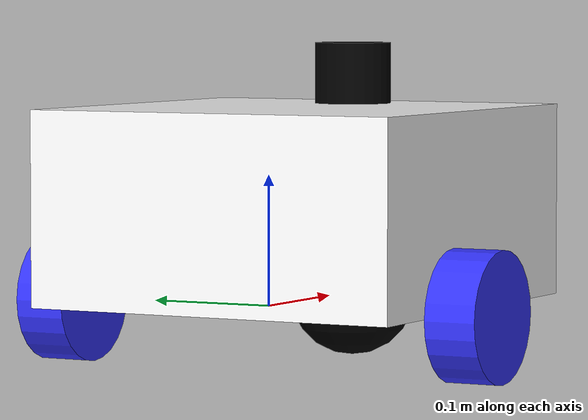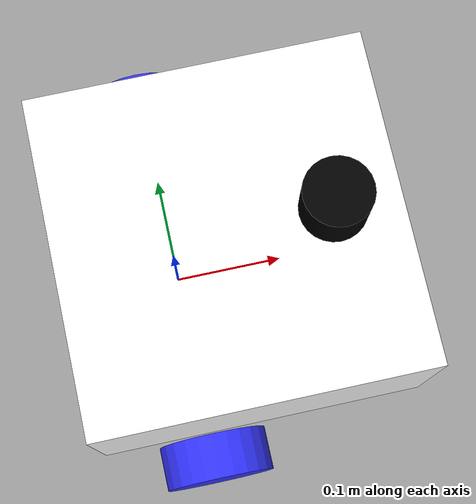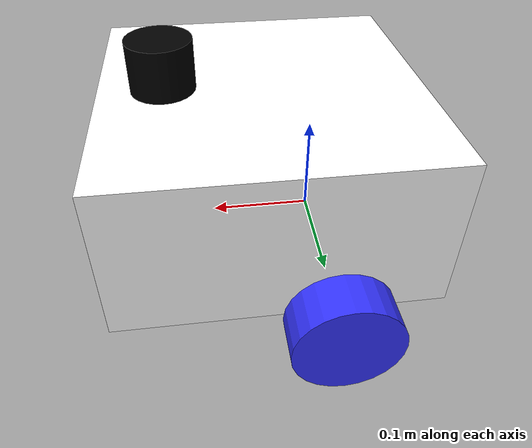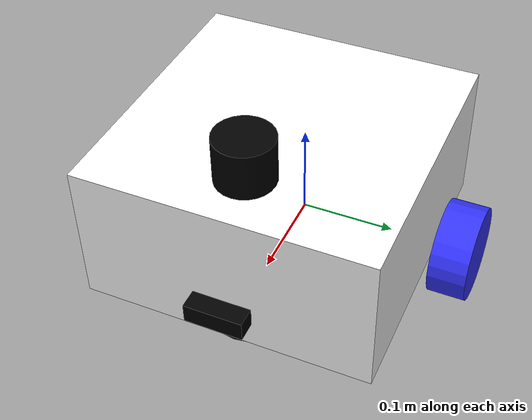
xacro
<?xml version="1.0"?>
<robot xmlns:xacro="http://ros.org/wiki/xacro" xmlns="http://www.ros.org/schema" name="amr_vision">

  <!-- Namespace argument -->
  <xacro:arg name="namespace" default="agv1"/>
  <xacro:property name="ns" value="$(arg namespace)"/>

  <!-- Materials -->
  <material name="white"><color rgba="1 1 1 1"/></material>
  <material name="orange"><color rgba="1 0.3 0.1 1"/></material>
  <material name="blue"><color rgba="0.2 0.2 1 1"/></material>
  <material name="black"><color rgba="0 0 0 1"/></material>

  <!-- Base Footprint Link -->
  <link name="$(arg namespace)/base_footprint"/>

  <!-- Base Link -->
  <link name="$(arg namespace)/base_link"/>

  <!-- Joint to connect base_footprint to base_link -->
  <joint name="base_footprint_to_base_link" type="fixed">
    <parent link="$(arg namespace)/base_footprint"/>
    <child link="$(arg namespace)/base_link"/>
    <origin xyz="0 0 0" rpy="0 0 0"/>
  </joint>

  <!-- Chassis -->
  <link name="$(arg namespace)/chassis">
    <visual>
      <origin xyz="0.15 0 0.075" rpy="0 0 0"/>
      <geometry><box size="0.3 0.3 0.15"/></geometry>
      <material name="white"/>
    </visual>
    <collision>
      <origin xyz="0.15 0 0.075" rpy="0 0 0"/>
      <geometry><box size="0.3 0.3 0.15"/></geometry>
    </collision>
    <inertial>
      <mass value="5.0"/>
      <origin xyz="0.15 0 0.075" rpy="0 0 0"/>
      <inertia ixx="0.00140625" ixy="0.0" ixz="0.0" iyy="0.00140625" iyz="0.0" izz="0.00225"/>
    </inertial>
  </link>

  <joint name="chassis_joint" type="fixed">
    <parent link="$(arg namespace)/base_link"/>
    <child link="$(arg namespace)/chassis"/>
    <origin xyz="-0.1 0 0" rpy="0 0 0"/>
  </joint>

  <!-- Left Wheel -->
  <link name="$(arg namespace)/left_wheel">
    <visual>
      <geometry><cylinder length="0.04" radius="0.05"/></geometry>
      <material name="blue"/>
    </visual>
    <collision>
      <geometry><cylinder length="0.04" radius="0.05"/></geometry>
    </collision>
    <inertial>
      <mass value="0.5"/>
      <origin xyz="0 0 0" rpy="0 0 0"/>
      <inertia ixx="1.04167e-04" ixy="0.0" ixz="0.0" iyy="1.04167e-04" iyz="0.0" izz="1.25e-04"/>
    </inertial>
  </link>

  <joint name="left_wheel_joint" type="continuous">
    <parent link="$(arg namespace)/base_link"/>
    <child link="$(arg namespace)/left_wheel"/>
    <origin xyz="0 0.175 0" rpy="-1.5708 0 0"/>
    <axis xyz="0 0 1"/>
  </joint>

  <!-- Right Wheel -->
  <link name="$(arg namespace)/right_wheel">
    <visual>
      <geometry><cylinder length="0.04" radius="0.05"/></geometry>
      <material name="blue"/>
    </visual>
    <collision>
      <geometry><cylinder length="0.04" radius="0.05"/></geometry>
    </collision>
    <inertial>
      <mass value="0.5"/>
      <origin xyz="0 0 0" rpy="0 0 0"/>
      <inertia ixx="1.04167e-04" ixy="0.0" ixz="0.0" iyy="1.04167e-04" iyz="0.0" izz="1.25e-04"/>
    </inertial>
  </link>

  <joint name="right_wheel_joint" type="continuous">
    <parent link="$(arg namespace)/base_link"/>
    <child link="$(arg namespace)/right_wheel"/>
    <origin xyz="0 -0.175 0" rpy="1.5708 0 0"/>
    <axis xyz="0 0 -1"/>
  </joint>

  <!-- Caster Wheel -->
  <link name="$(arg namespace)/caster_wheel">
    <visual>
      <geometry><sphere radius="0.05"/></geometry>
      <material name="black"/>
    </visual>
    <collision>
      <geometry><sphere radius="0.05"/></geometry>
    </collision>
    <inertial>
      <mass value="0.1"/>
      <origin xyz="0 0 0" rpy="0 0 0"/>
      <inertia ixx="2.0e-04" ixy="0.0" ixz="0.0" iyy="2.0e-04" iyz="0.0" izz="2.0e-04"/>
    </inertial>
  </link>

  <joint name="caster_wheel_joint" type="fixed">
    <parent link="$(arg namespace)/chassis"/>
    <child link="$(arg namespace)/caster_wheel"/>
    <origin xyz="0.24 0 0" rpy="0 0 0"/>
  </joint>

  <!-- LIDAR -->
  <link name="$(arg namespace)/lidar_link">
    <visual>
      <origin xyz="0 0 0" rpy="0 0 0"/>
      <geometry>
        <cylinder radius="0.03" length="0.05"/>
      </geometry>
      <material name="black"/>
    </visual>
  </link>

  <joint name="base_to_lidar" type="fixed">
    <parent link="$(arg namespace)/base_link"/>
    <child link="$(arg namespace)/lidar_link"/>
    <origin xyz="0.14 0 0.173" rpy="0 0 0"/>
  </joint>

  <!-- Camera -->
  <link name="$(arg namespace)/camera_link">
    <visual>
      <origin xyz="0 0 0" rpy="0 0 0"/>
      <geometry>
        <box size="0.02 0.06 0.02"/>
      </geometry>
      <material name="black"/>
    </visual>
    <collision>
      <origin xyz="0 0 0" rpy="0 0 0"/>
      <geometry>
        <box size="0.02 0.06 0.02"/>
      </geometry>
    </collision>
    <inertial>
      <mass value="0.01"/>
      <origin xyz="0 0 0" rpy="0 0 0"/>
      <inertia ixx="3.33e-07" ixy="0.0" ixz="0.0" iyy="8.33e-08" iyz="0.0" izz="3.83e-07"/>
    </inertial>
  </link>

  <joint name="camera_joint" type="fixed">
    <parent link="$(arg namespace)/base_link"/>
    <child link="$(arg namespace)/camera_link"/>
    <!-- x=0.21: front face of chassis (0.20) + 0.01m clearance
         y=0.0:  centered
         z=0.0375: lower quarter of chassis height (0.15/4) -->
    <origin xyz="0.21 0.0 0.0375" rpy="0 0 0"/>
  </joint>

  <!-- Gazebo Elements -->
  <gazebo reference="$(arg namespace)/left_wheel">
    <material>Gazebo/Blue</material>
  </gazebo>

  <gazebo reference="$(arg namespace)/right_wheel">
    <material>Gazebo/Blue</material>
  </gazebo>

  <gazebo reference="$(arg namespace)/caster_wheel">
    <mu1>0.001</mu1>
    <mu2>0.001</mu2>
    <material>Gazebo/Black</material>
  </gazebo>

  <gazebo reference="$(arg namespace)/lidar_link">
    <sensor type="ray" name="lidar_sensor">
      <update_rate>10</update_rate>
      <pose>0.14 0 0.173 0 0 0</pose>
      <visualize>true</visualize>
      <ray>
        <scan>
          <horizontal>
            <samples>720</samples>
            <resolution>1</resolution>
            <min_angle>-3.14159</min_angle>
            <max_angle>3.14159</max_angle>
          </horizontal>
        </scan>
        <range>
          <min>0.1</min>
          <max>30.0</max>
          <resolution>0.01</resolution>
        </range>
        <noise>
          <type>gaussian</type>
          <mean>0.0</mean>
          <stddev>0.01</stddev>
        </noise>
      </ray>
      <plugin name="gazebo_ros_laser_controller" filename="libgazebo_ros_ray_sensor.so">
        <ros>
          <namespace>$(arg namespace)</namespace>
          <remapping>~/out:=scan</remapping>
        </ros>
        <output_type>sensor_msgs/LaserScan</output_type>
        <frameName>$(arg namespace)/lidar_link</frameName>
      </plugin>
    </sensor>
  </gazebo>

  <gazebo reference="$(arg namespace)/camera_link">
    <sensor type="camera" name="${ns}_camera">
      <update_rate>10</update_rate>
      <camera name="${ns}_camera">
        <horizontal_fov>1.3962634</horizontal_fov>
        <image>
          <width>640</width>
          <height>480</height>
          <format>R8G8B8</format>
        </image>
        <clip>
          <near>0.02</near>
          <far>10.0</far>
        </clip>
      </camera>
      <plugin name="${ns}_camera_controller" filename="libgazebo_ros_camera.so">
        <ros>
          <namespace>${ns}</namespace>
          <remapping>${ns}_camera/image_raw:=camera/image_raw</remapping>
          <remapping>${ns}_camera/camera_info:=camera/camera_info</remapping>
        </ros>
        <frame_name>${ns}/camera_link</frame_name>
      </plugin>
    </sensor>
  </gazebo>

  <gazebo>
    <plugin name="diff_drive_controller" filename="libgazebo_ros_diff_drive.so">
      <ros>
        <namespace>$(arg namespace)</namespace>
      </ros>
      <update_rate>50.0</update_rate>
      <left_joint>left_wheel_joint</left_joint>
      <right_joint>right_wheel_joint</right_joint>
      <wheel_separation>0.35</wheel_separation>
      <wheel_diameter>0.1</wheel_diameter>
      <max_wheel_acceleration>1.0</max_wheel_acceleration>
      <max_wheel_torque>200</max_wheel_torque>
      <command_topic>cmd_vel</command_topic>
      <odometry_frame>world</odometry_frame>
      <robot_base_frame>base_link</robot_base_frame>
      <publish_odom>true</publish_odom>
      <publish_tf>true</publish_tf>
      <publish_odom_tf>false</publish_odom_tf>
      <publish_wheel_tf>true</publish_wheel_tf>
    </plugin>
    <plugin name="ground_truth_plugin" filename="libgazebo_ros_p3d.so">
      <ros>
        <namespace>$(arg namespace)</namespace>
        <remapping>odom:=ground_truth</remapping>
      </ros>
      <frame_name>world</frame_name>
      <body_name>$(arg namespace)/base_footprint</body_name>
      <update_rate>30.0</update_rate>
    </plugin>
  </gazebo>

</robot>
